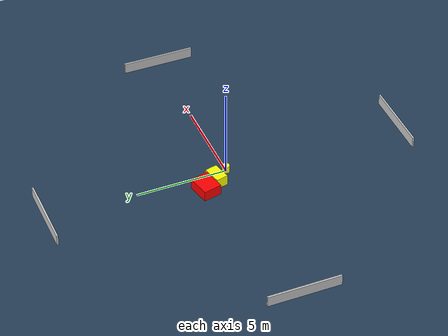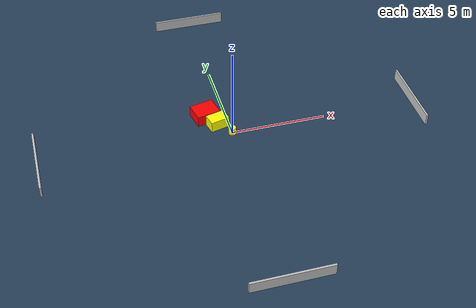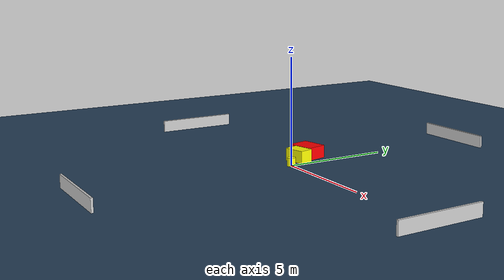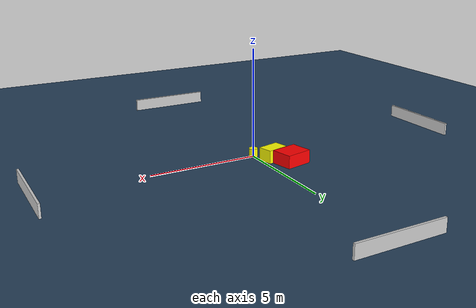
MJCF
<?xml version="1.0" ?>
<mujoco model="generated_environment">
  <option timestep="0.01" integrator="RK4" cone="elliptic"/>
  <default>
    <geom density="1"/>
  </default>
  <asset>
    <texture builtin="gradient" height="3072" name="skybox" rgb1="0.3 0.5 0.7" rgb2="0 0 0" type="skybox" width="512"/>
    <texture builtin="checker" height="300" name="groundplane" rgb1="0.2 0.3 0.4" rgb2="0.1 0.2 0.3" type="2d" width="300"/>
    <material name="groundplane" reflectance="0.2" texrepeat="5 5" texture="groundplane"/>
  </asset>
  <worldbody>
    <light dir="0 0 -1" directional="true" pos="0 0 1.5"/>
    <geom condim="3" friction="0.5 0.005 0.001" material="groundplane" name="floor" pos="0 0 0" size="0 0 0.05" type="plane"/>
    <body name="walls">
      <geom name="wall_1" condim="4" pos="-10.0 0.0 0.3" rgba="0.800000011920929 0.800000011920929 0.800000011920929 1.0" size="0.05 2.0 0.3" type="box"/>
      <geom name="wall_2" condim="4" pos="10.0 0.0 0.3" rgba="0.800000011920929 0.800000011920929 0.800000011920929 1.0" size="0.05 2.0 0.3" type="box"/>
      <geom name="wall_3" condim="4" pos="0.0 -10.0 0.3" rgba="0.800000011920929 0.800000011920929 0.800000011920929 1.0" size="2.0 0.05 0.3" type="box"/>
      <geom name="wall_4" condim="4" pos="0.0 10.0 0.3" rgba="0.800000011920929 0.800000011920929 0.800000011920929 1.0" size="2.0 0.05 0.3" type="box"/>
    </body>
    <body name="robot">
      <joint name="joint_x" type="slide" pos="0 0 0" axis="1 0 0"/>
      <joint name="joint_y" type="slide" pos="0 0 0" axis="0 1 0"/>
      <geom name="robot" type="cylinder" pos="0.0 0.0 0.2" size="0.2 0.2 0.0" mass="5.0" friction="1.0 0.005 0.0001" condim="4" rgba="1.0 1.0 0.0 1.0"/>
    </body>
    <body name="obstacle_1_movable">
      <geom name="obstacle_1_movable" condim="4" pos="-0.5810193780254621 0.777151480166032 0.3" euler="0 0 103.46529715255636" friction="0.0 0.005 0.001" rgba="1.0 1.0 0.0 1.0" size="0.33549069386508656 0.5114824017692177 0.3" type="box" mass="0.1"/>
      <joint type="free"/>
    </body>
    <body name="obstacle_2_static">
      <geom name="obstacle_2_static" condim="4" pos="-1.0636051515581793 1.5711890332545029 0.3" euler="0 0 102.27065510623154" friction="0.0 0.005 0.001" rgba="1.0 0.0 0.0 1.0" size="0.5065260233209048 0.6342928365240192 0.3" type="box"/>
    </body>
  </worldbody>
  <actuator>
    <motor name="actuator_x" joint="joint_x" gear="1" ctrlrange="-1 1"/>
    <motor name="actuator_y" joint="joint_y" gear="1" ctrlrange="-1 1"/>
  </actuator>
</mujoco>
